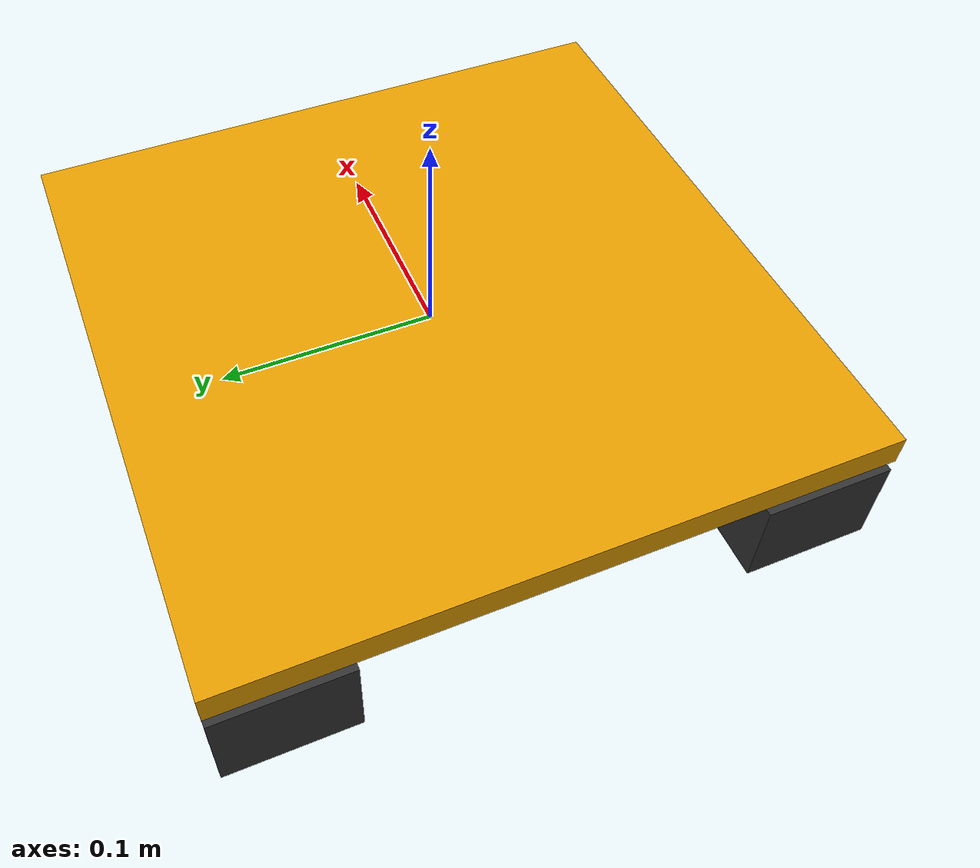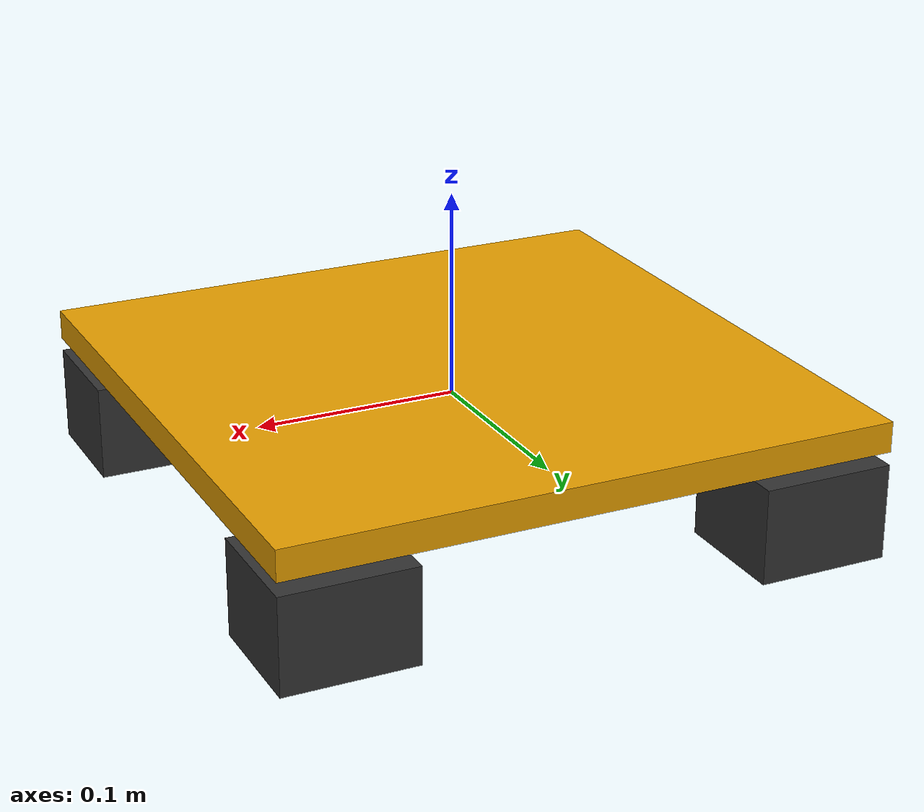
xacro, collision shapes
<?xml version="1.0"?>
<robot xmlns:xacro="http://www.ros.org/wiki/xacro" name="slede">
  <xacro:include filename="macro.urdf.xacro" />
  <xacro:property name="plate_width" value="0.3" />
  <xacro:property name="plate_thickness" value="0.015" />

  <link name="base_plate_link">
    <xacro:sw_visual_import filename="slede" length="${plate_width}" width="${plate_width}"
      height="${plate_thickness}" />
    <collision>
      <origin xyz="0 0 ${plate_thickness/2}" />
      <geometry>
        <box size="${plate_width} ${plate_width} ${plate_thickness}" />
      </geometry>
    </collision>
  </link>

  <material name="dark_grey">
    <color rgba="0.2 0.2 0.2 1" />
  </material>

  <xacro:property name="bearing_width" value="0.065" />
  <xacro:property name="bearing_height" value="0.060" />
  <xacro:property name="bearing_thickness" value="0.047" />
  <xacro:macro name="bearing" params="prefix reflect_x reflect_y">
    <link name="${prefix}_bearing">
      <visual>
        <material name="dark_grey"/>
        <origin rpy="${-pi/2} 0 ${pi/2}" xyz="${(bearing_width/2)} ${(-bearing_height/2)} 0" />
        <geometry>
          <xacro:sw_mesh_import filename="lager" />
        </geometry>
      </visual>
      <collision>
        <origin xyz="0 0 ${-bearing_height/2}" />
        <geometry>
          <box size="${bearing_width} ${bearing_height} ${bearing_thickness}" />
        </geometry>
      </collision>
    </link>

    <joint name="base_plate_to_${prefix}_bearing" type="fixed">
      <parent link="base_plate_link" />
      <child link="${prefix}_bearing" />
      <origin
        xyz="${(plate_width-bearing_width)/(2*reflect_x)} ${(plate_width-bearing_height)/(2*reflect_y)} 0" />
    </joint>
  </xacro:macro>

  <xacro:bearing prefix="top_left" reflect_x="-1" reflect_y="1" />
  <xacro:bearing prefix="top_right" reflect_x="1" reflect_y="1" />
  <xacro:bearing prefix="bottom_left" reflect_x="-1" reflect_y="-1" />
  <xacro:bearing prefix="bottom_right" reflect_x="1" reflect_y="-1" />
</robot>

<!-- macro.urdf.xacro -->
<robot xmlns:xacro="http://www.ros.org/wiki/xacro" name="macro">
    <xacro:macro name="sw_mesh_import" params="filename">
        <mesh filename="package://robo_inspecto_description/meshes/${filename}.STL" scale="0.001 0.001 0.001" />
      </xacro:macro>

      <xacro:macro name="sw_visual_import" params="filename length width height">
        <visual>
          <origin rpy="${pi/2} 0 ${pi/2}" xyz="${-(length/2)} ${-(width/2)} 0" />
          <geometry>
            <xacro:sw_mesh_import filename="${filename}" />
          </geometry>
        </visual>
      </xacro:macro>
</robot>
